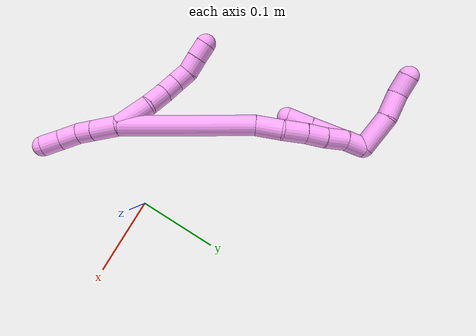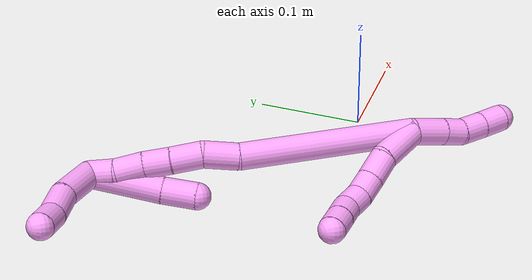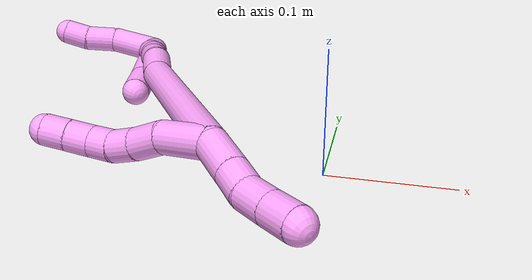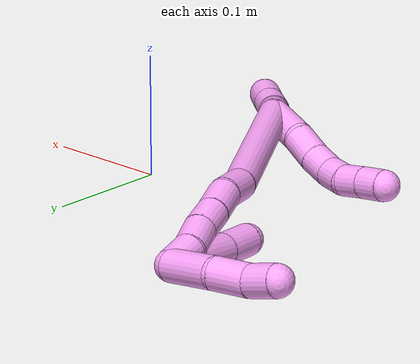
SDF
<sdf version="1.7">
 <world name="default">
  <model name="4">
   <static>0</static>
   <link name="4">
    <collision name="collision-cylinder-e_1_2_8">
     <pose>-0.009078 -0.004353 0.018913 0.226215 -0.437532 -0.050498</pose>
     <geometry><cylinder><radius>0.0125</radius><length>0.042851</length></cylinder></geometry>
     <surface>
      <friction><ode><mu>1.16</mu><mu2>1.16</mu2><slip1>0</slip1><slip2>0</slip2></ode></friction>
      <contact><ode><kp>1e+06</kp><kd>1</kd><max_vel>0</max_vel><min_depth>0.001</min_depth></ode></contact>
     </surface>
    </collision>
    <visual name="visual-cylinder-e_1_2_8">
     <pose>-0.009078 -0.004353 0.018913 0.226215 -0.437532 -0.050498</pose>
     <geometry><cylinder><radius>0.0125</radius><length>0.042851</length></cylinder></geometry>
     <material><ambient>1 0.65098 0.996078 1</ambient></material>
    </visual>
    <collision name="collision-cylinder-e_2_8_9">
     <pose>-0.026675 -0.010865 0.047155 0.227433 -0.726994 -0.086836</pose>
     <geometry><cylinder><radius>0.0125</radius><length>0.025634</length></cylinder></geometry>
     <surface>
      <friction><ode><mu>1.16</mu><mu2>1.16</mu2><slip1>0</slip1><slip2>0</slip2></ode></friction>
      <contact><ode><kp>1e+06</kp><kd>1</kd><max_vel>0</max_vel><min_depth>0.001</min_depth></ode></contact>
     </surface>
    </collision>
    <visual name="visual-cylinder-e_2_8_9">
     <pose>-0.026675 -0.010865 0.047155 0.227433 -0.726994 -0.086836</pose>
     <geometry><cylinder><radius>0.0125</radius><length>0.025634</length></cylinder></geometry>
     <material><ambient>1 0.65098 0.996078 1</ambient></material>
    </visual>
    <collision name="collision-cylinder-e_3_9_10">
     <pose>-0.041303 -0.015765 0.064486 0.330044 -0.625577 -0.107613</pose>
     <geometry><cylinder><radius>0.0125</radius><length>0.020867</length></cylinder></geometry>
     <surface>
      <friction><ode><mu>1.16</mu><mu2>1.16</mu2><slip1>0</slip1><slip2>0</slip2></ode></friction>
      <contact><ode><kp>1e+06</kp><kd>1</kd><max_vel>0</max_vel><min_depth>0.001</min_depth></ode></contact>
     </surface>
    </collision>
    <visual name="visual-cylinder-e_3_9_10">
     <pose>-0.041303 -0.015765 0.064486 0.330044 -0.625577 -0.107613</pose>
     <geometry><cylinder><radius>0.0125</radius><length>0.020867</length></cylinder></geometry>
     <material><ambient>1 0.65098 0.996078 1</ambient></material>
    </visual>
    <collision name="collision-cylinder-e_4_10_11">
     <pose>-0.050935 -0.021842 0.081321 0.361047 -0.357164 -0.065864</pose>
     <geometry><cylinder><radius>0.0125</radius><length>0.020156</length></cylinder></geometry>
     <surface>
      <friction><ode><mu>1.16</mu><mu2>1.16</mu2><slip1>0</slip1><slip2>0</slip2></ode></friction>
      <contact><ode><kp>1e+06</kp><kd>1</kd><max_vel>0</max_vel><min_depth>0.001</min_depth></ode></contact>
     </surface>
    </collision>
    <visual name="visual-cylinder-e_4_10_11">
     <pose>-0.050935 -0.021842 0.081321 0.361047 -0.357164 -0.065864</pose>
     <geometry><cylinder><radius>0.0125</radius><length>0.020156</length></cylinder></geometry>
     <material><ambient>1 0.65098 0.996078 1</ambient></material>
    </visual>
    <collision name="collision-cylinder-e_5_11_12">
     <pose>-0.057206 -0.031523 0.097636 0.703409 -0.273063 -0.100746</pose>
     <geometry><cylinder><radius>0.0125</radius><length>0.020376</length></cylinder></geometry>
     <surface>
      <friction><ode><mu>1.16</mu><mu2>1.16</mu2><slip1>0</slip1><slip2>0</slip2></ode></friction>
      <contact><ode><kp>1e+06</kp><kd>1</kd><max_vel>0</max_vel><min_depth>0.001</min_depth></ode></contact>
     </surface>
    </collision>
    <visual name="visual-cylinder-e_5_11_12">
     <pose>-0.057206 -0.031523 0.097636 0.703409 -0.273063 -0.100746</pose>
     <geometry><cylinder><radius>0.0125</radius><length>0.020376</length></cylinder></geometry>
     <material><ambient>1 0.65098 0.996078 1</ambient></material>
    </visual>
    <collision name="collision-cylinder-e_6_12_6">
     <pose>-0.062826 -0.04386 0.112669 0.670742 -0.289543 -0.10154</pose>
     <geometry><cylinder><radius>0.0125</radius><length>0.020116</length></cylinder></geometry>
     <surface>
      <friction><ode><mu>1.16</mu><mu2>1.16</mu2><slip1>0</slip1><slip2>0</slip2></ode></friction>
      <contact><ode><kp>1e+06</kp><kd>1</kd><max_vel>0</max_vel><min_depth>0.001</min_depth></ode></contact>
     </surface>
    </collision>
    <visual name="visual-cylinder-e_6_12_6">
     <pose>-0.062826 -0.04386 0.112669 0.670742 -0.289543 -0.10154</pose>
     <geometry><cylinder><radius>0.0125</radius><length>0.020116</length></cylinder></geometry>
     <material><ambient>1 0.65098 0.996078 1</ambient></material>
    </visual>
    <collision name="collision-cylinder-e_1_2_13">
     <pose>-0.002046 -0.000515 -0.016127 3.10964 -0.126162 -2.64606</pose>
     <geometry><cylinder><radius>0.0125</radius><length>0.032528</length></cylinder></geometry>
     <surface>
      <friction><ode><mu>1.16</mu><mu2>1.16</mu2><slip1>0</slip1><slip2>0</slip2></ode></friction>
      <contact><ode><kp>1e+06</kp><kd>1</kd><max_vel>0</max_vel><min_depth>0.001</min_depth></ode></contact>
     </surface>
    </collision>
    <visual name="visual-cylinder-e_1_2_13">
     <pose>-0.002046 -0.000515 -0.016127 3.10964 -0.126162 -2.64606</pose>
     <geometry><cylinder><radius>0.0125</radius><length>0.032528</length></cylinder></geometry>
     <material><ambient>1 0.65098 0.996078 1</ambient></material>
    </visual>
    <collision name="collision-cylinder-e_2_13_14">
     <pose>-0.005554 -0.001382 -0.042425 3.10713 -0.142612 -2.6681</pose>
     <geometry><cylinder><radius>0.0125</radius><length>0.020564</length></cylinder></geometry>
     <surface>
      <friction><ode><mu>1.16</mu><mu2>1.16</mu2><slip1>0</slip1><slip2>0</slip2></ode></friction>
      <contact><ode><kp>1e+06</kp><kd>1</kd><max_vel>0</max_vel><min_depth>0.001</min_depth></ode></contact>
     </surface>
    </collision>
    <visual name="visual-cylinder-e_2_13_14">
     <pose>-0.005554 -0.001382 -0.042425 3.10713 -0.142612 -2.6681</pose>
     <geometry><cylinder><radius>0.0125</radius><length>0.020564</length></cylinder></geometry>
     <material><ambient>1 0.65098 0.996078 1</ambient></material>
    </visual>
    <collision name="collision-cylinder-e_3_14_15">
     <pose>-0.00532 -0.001417 -0.064152 -3.11432 0.145663 -2.772</pose>
     <geometry><cylinder><radius>0.0125</radius><length>0.023367</length></cylinder></geometry>
     <surface>
      <friction><ode><mu>1.16</mu><mu2>1.16</mu2><slip1>0</slip1><slip2>0</slip2></ode></friction>
      <contact><ode><kp>1e+06</kp><kd>1</kd><max_vel>0</max_vel><min_depth>0.001</min_depth></ode></contact>
     </surface>
    </collision>
    <visual name="visual-cylinder-e_3_14_15">
     <pose>-0.00532 -0.001417 -0.064152 -3.11432 0.145663 -2.772</pose>
     <geometry><cylinder><radius>0.0125</radius><length>0.023367</length></cylinder></geometry>
     <material><ambient>1 0.65098 0.996078 1</ambient></material>
    </visual>
    <collision name="collision-cylinder-e_4_15_5">
     <pose>-0.001562 -0.001068 -0.087296 -3.13864 0.176101 -3.1081</pose>
     <geometry><cylinder><radius>0.0125</radius><length>0.023541</length></cylinder></geometry>
     <surface>
      <friction><ode><mu>1.16</mu><mu2>1.16</mu2><slip1>0</slip1><slip2>0</slip2></ode></friction>
      <contact><ode><kp>1e+06</kp><kd>1</kd><max_vel>0</max_vel><min_depth>0.001</min_depth></ode></contact>
     </surface>
    </collision>
    <visual name="visual-cylinder-e_4_15_5">
     <pose>-0.001562 -0.001068 -0.087296 -3.13864 0.176101 -3.1081</pose>
     <geometry><cylinder><radius>0.0125</radius><length>0.023541</length></cylinder></geometry>
     <material><ambient>1 0.65098 0.996078 1</ambient></material>
    </visual>
    <collision name="collision-cylinder-e_1_2_16">
     <pose>-0.003188 0.023606 0.077779 -0.294671 -0.039199 0.005818</pose>
     <geometry><cylinder><radius>0.0125</radius><length>0.162689</length></cylinder></geometry>
     <surface>
      <friction><ode><mu>1.16</mu><mu2>1.16</mu2><slip1>0</slip1><slip2>0</slip2></ode></friction>
      <contact><ode><kp>1e+06</kp><kd>1</kd><max_vel>0</max_vel><min_depth>0.001</min_depth></ode></contact>
     </surface>
    </collision>
    <visual name="visual-cylinder-e_1_2_16">
     <pose>-0.003188 0.023606 0.077779 -0.294671 -0.039199 0.005818</pose>
     <geometry><cylinder><radius>0.0125</radius><length>0.162689</length></cylinder></geometry>
     <material><ambient>1 0.65098 0.996078 1</ambient></material>
    </visual>
    <collision name="collision-cylinder-e_2_16_17">
     <pose>-0.003914 0.053508 0.17017 -0.406767 0.153519 -0.031721</pose>
     <geometry><cylinder><radius>0.0125</radius><length>0.032201</length></cylinder></geometry>
     <surface>
      <friction><ode><mu>1.16</mu><mu2>1.16</mu2><slip1>0</slip1><slip2>0</slip2></ode></friction>
      <contact><ode><kp>1e+06</kp><kd>1</kd><max_vel>0</max_vel><min_depth>0.001</min_depth></ode></contact>
     </surface>
    </collision>
    <visual name="visual-cylinder-e_2_16_17">
     <pose>-0.003914 0.053508 0.17017 -0.406767 0.153519 -0.031721</pose>
     <geometry><cylinder><radius>0.0125</radius><length>0.032201</length></cylinder></geometry>
     <material><ambient>1 0.65098 0.996078 1</ambient></material>
    </visual>
    <collision name="collision-cylinder-e_3_17_18">
     <pose>-0.003133 0.06644 0.197456 -0.482415 -0.117038 0.028822</pose>
     <geometry><cylinder><radius>0.0125</radius><length>0.028808</length></cylinder></geometry>
     <surface>
      <friction><ode><mu>1.16</mu><mu2>1.16</mu2><slip1>0</slip1><slip2>0</slip2></ode></friction>
      <contact><ode><kp>1e+06</kp><kd>1</kd><max_vel>0</max_vel><min_depth>0.001</min_depth></ode></contact>
     </surface>
    </collision>
    <visual name="visual-cylinder-e_3_17_18">
     <pose>-0.003133 0.06644 0.197456 -0.482415 -0.117038 0.028822</pose>
     <geometry><cylinder><radius>0.0125</radius><length>0.028808</length></cylinder></geometry>
     <material><ambient>1 0.65098 0.996078 1</ambient></material>
    </visual>
    <collision name="collision-cylinder-e_4_18_19">
     <pose>-0.006 0.079584 0.220641 -0.55432 -0.095534 0.027197</pose>
     <geometry><cylinder><radius>0.0125</radius><length>0.02484</length></cylinder></geometry>
     <surface>
      <friction><ode><mu>1.16</mu><mu2>1.16</mu2><slip1>0</slip1><slip2>0</slip2></ode></friction>
      <contact><ode><kp>1e+06</kp><kd>1</kd><max_vel>0</max_vel><min_depth>0.001</min_depth></ode></contact>
     </surface>
    </collision>
    <visual name="visual-cylinder-e_4_18_19">
     <pose>-0.006 0.079584 0.220641 -0.55432 -0.095534 0.027197</pose>
     <geometry><cylinder><radius>0.0125</radius><length>0.02484</length></cylinder></geometry>
     <material><ambient>1 0.65098 0.996078 1</ambient></material>
    </visual>
    <collision name="collision-cylinder-e_5_19_20">
     <pose>-0.009427 0.092114 0.242733 -0.479557 -0.170094 0.04168</pose>
     <geometry><cylinder><radius>0.0125</radius><length>0.026485</length></cylinder></geometry>
     <surface>
      <friction><ode><mu>1.16</mu><mu2>1.16</mu2><slip1>0</slip1><slip2>0</slip2></ode></friction>
      <contact><ode><kp>1e+06</kp><kd>1</kd><max_vel>0</max_vel><min_depth>0.001</min_depth></ode></contact>
     </surface>
    </collision>
    <visual name="visual-cylinder-e_5_19_20">
     <pose>-0.009427 0.092114 0.242733 -0.479557 -0.170094 0.04168</pose>
     <geometry><cylinder><radius>0.0125</radius><length>0.026485</length></cylinder></geometry>
     <material><ambient>1 0.65098 0.996078 1</ambient></material>
    </visual>
    <collision name="collision-cylinder-e_6_20_1">
     <pose>-0.011999 0.106099 0.263925 -0.691844 -0.026489 0.009548</pose>
     <geometry><cylinder><radius>0.0125</radius><length>0.024976</length></cylinder></geometry>
     <surface>
      <friction><ode><mu>1.16</mu><mu2>1.16</mu2><slip1>0</slip1><slip2>0</slip2></ode></friction>
      <contact><ode><kp>1e+06</kp><kd>1</kd><max_vel>0</max_vel><min_depth>0.001</min_depth></ode></contact>
     </surface>
    </collision>
    <visual name="visual-cylinder-e_6_20_1">
     <pose>-0.011999 0.106099 0.263925 -0.691844 -0.026489 0.009548</pose>
     <geometry><cylinder><radius>0.0125</radius><length>0.024976</length></cylinder></geometry>
     <material><ambient>1 0.65098 0.996078 1</ambient></material>
    </visual>
    <collision name="collision-cylinder-e_1_1_21">
     <pose>-0.021843 0.096137 0.246062 2.56352 -0.282219 -0.89132</pose>
     <geometry><cylinder><radius>0.0125</radius><length>0.068317</length></cylinder></geometry>
     <surface>
      <friction><ode><mu>1.16</mu><mu2>1.16</mu2><slip1>0</slip1><slip2>0</slip2></ode></friction>
      <contact><ode><kp>1e+06</kp><kd>1</kd><max_vel>0</max_vel><min_depth>0.001</min_depth></ode></contact>
     </surface>
    </collision>
    <visual name="visual-cylinder-e_1_1_21">
     <pose>-0.021843 0.096137 0.246062 2.56352 -0.282219 -0.89132</pose>
     <geometry><cylinder><radius>0.0125</radius><length>0.068317</length></cylinder></geometry>
     <material><ambient>1 0.65098 0.996078 1</ambient></material>
    </visual>
    <collision name="collision-cylinder-e_2_21_4">
     <pose>-0.03486 0.069227 0.206017 2.52097 -0.223095 -0.672114</pose>
     <geometry><cylinder><radius>0.0125</radius><length>0.031683</length></cylinder></geometry>
     <surface>
      <friction><ode><mu>1.16</mu><mu2>1.16</mu2><slip1>0</slip1><slip2>0</slip2></ode></friction>
      <contact><ode><kp>1e+06</kp><kd>1</kd><max_vel>0</max_vel><min_depth>0.001</min_depth></ode></contact>
     </surface>
    </collision>
    <visual name="visual-cylinder-e_2_21_4">
     <pose>-0.03486 0.069227 0.206017 2.52097 -0.223095 -0.672114</pose>
     <geometry><cylinder><radius>0.0125</radius><length>0.031683</length></cylinder></geometry>
     <material><ambient>1 0.65098 0.996078 1</ambient></material>
    </visual>
    <collision name="collision-cylinder-e_1_1_22">
     <pose>-0.017845 0.101091 0.291329 0.630041 -0.245457 -0.080348</pose>
     <geometry><cylinder><radius>0.0125</radius><length>0.045397</length></cylinder></geometry>
     <surface>
      <friction><ode><mu>1.16</mu><mu2>1.16</mu2><slip1>0</slip1><slip2>0</slip2></ode></friction>
      <contact><ode><kp>1e+06</kp><kd>1</kd><max_vel>0</max_vel><min_depth>0.001</min_depth></ode></contact>
     </surface>
    </collision>
    <visual name="visual-cylinder-e_1_1_22">
     <pose>-0.017845 0.101091 0.291329 0.630041 -0.245457 -0.080348</pose>
     <geometry><cylinder><radius>0.0125</radius><length>0.045397</length></cylinder></geometry>
     <material><ambient>1 0.65098 0.996078 1</ambient></material>
    </visual>
    <collision name="collision-cylinder-e_2_22_23">
     <pose>-0.029527 0.077786 0.318513 0.83294 -0.415789 -0.18608</pose>
     <geometry><cylinder><radius>0.0125</radius><length>0.030529</length></cylinder></geometry>
     <surface>
      <friction><ode><mu>1.16</mu><mu2>1.16</mu2><slip1>0</slip1><slip2>0</slip2></ode></friction>
      <contact><ode><kp>1e+06</kp><kd>1</kd><max_vel>0</max_vel><min_depth>0.001</min_depth></ode></contact>
     </surface>
    </collision>
    <visual name="visual-cylinder-e_2_22_23">
     <pose>-0.029527 0.077786 0.318513 0.83294 -0.415789 -0.18608</pose>
     <geometry><cylinder><radius>0.0125</radius><length>0.030529</length></cylinder></geometry>
     <material><ambient>1 0.65098 0.996078 1</ambient></material>
    </visual>
    <collision name="collision-cylinder-e_3_23_3">
     <pose>-0.037951 0.05903 0.336204 0.792997 -0.188792 -0.079236</pose>
     <geometry><cylinder><radius>0.0125</radius><length>0.024074</length></cylinder></geometry>
     <surface>
      <friction><ode><mu>1.16</mu><mu2>1.16</mu2><slip1>0</slip1><slip2>0</slip2></ode></friction>
      <contact><ode><kp>1e+06</kp><kd>1</kd><max_vel>0</max_vel><min_depth>0.001</min_depth></ode></contact>
     </surface>
    </collision>
    <visual name="visual-cylinder-e_3_23_3">
     <pose>-0.037951 0.05903 0.336204 0.792997 -0.188792 -0.079236</pose>
     <geometry><cylinder><radius>0.0125</radius><length>0.024074</length></cylinder></geometry>
     <material><ambient>1 0.65098 0.996078 1</ambient></material>
    </visual>
    <collision name="collision-sphere-3">
     <pose>-0.04021 0.050607 0.3445 0 -0 0</pose>
     <geometry><sphere><radius>0.0125</radius></sphere></geometry>
     <surface>
      <friction><ode><mu>1.16</mu><mu2>1.16</mu2><slip1>0</slip1><slip2>0</slip2></ode></friction>
      <contact><ode><kp>1e+06</kp><kd>1</kd><max_vel>0</max_vel><min_depth>0.001</min_depth></ode></contact>
     </surface>
    </collision>
    <visual name="visual-sphere-3">
     <pose>-0.04021 0.050607 0.3445 0 -0 0</pose>
     <geometry><sphere><radius>0.0125</radius></sphere></geometry>
     <material><ambient>1 0.65098 0.996078 1</ambient></material>
    </visual>
    <collision name="collision-sphere-23">
     <pose>-0.035692 0.067454 0.327907 0 -0 0</pose>
     <geometry><sphere><radius>0.0125</radius></sphere></geometry>
     <surface>
      <friction><ode><mu>1.16</mu><mu2>1.16</mu2><slip1>0</slip1><slip2>0</slip2></ode></friction>
      <contact><ode><kp>1e+06</kp><kd>1</kd><max_vel>0</max_vel><min_depth>0.001</min_depth></ode></contact>
     </surface>
    </collision>
    <visual name="visual-sphere-23">
     <pose>-0.035692 0.067454 0.327907 0 -0 0</pose>
     <geometry><sphere><radius>0.0125</radius></sphere></geometry>
     <material><ambient>1 0.65098 0.996078 1</ambient></material>
    </visual>
    <collision name="collision-sphere-22">
     <pose>-0.023361 0.088118 0.30912 0 -0 0</pose>
     <geometry><sphere><radius>0.0125</radius></sphere></geometry>
     <surface>
      <friction><ode><mu>1.16</mu><mu2>1.16</mu2><slip1>0</slip1><slip2>0</slip2></ode></friction>
      <contact><ode><kp>1e+06</kp><kd>1</kd><max_vel>0</max_vel><min_depth>0.001</min_depth></ode></contact>
     </surface>
    </collision>
    <visual name="visual-sphere-22">
     <pose>-0.023361 0.088118 0.30912 0 -0 0</pose>
     <geometry><sphere><radius>0.0125</radius></sphere></geometry>
     <material><ambient>1 0.65098 0.996078 1</ambient></material>
    </visual>
    <collision name="collision-sphere-4">
     <pose>-0.038365 0.060243 0.193449 0 -0 0</pose>
     <geometry><sphere><radius>0.0125</radius></sphere></geometry>
     <surface>
      <friction><ode><mu>1.16</mu><mu2>1.16</mu2><slip1>0</slip1><slip2>0</slip2></ode></friction>
      <contact><ode><kp>1e+06</kp><kd>1</kd><max_vel>0</max_vel><min_depth>0.001</min_depth></ode></contact>
     </surface>
    </collision>
    <visual name="visual-sphere-4">
     <pose>-0.038365 0.060243 0.193449 0 -0 0</pose>
     <geometry><sphere><radius>0.0125</radius></sphere></geometry>
     <material><ambient>1 0.65098 0.996078 1</ambient></material>
    </visual>
    <collision name="collision-sphere-21">
     <pose>-0.031355 0.078211 0.218585 0 -0 0</pose>
     <geometry><sphere><radius>0.0125</radius></sphere></geometry>
     <surface>
      <friction><ode><mu>1.16</mu><mu2>1.16</mu2><slip1>0</slip1><slip2>0</slip2></ode></friction>
      <contact><ode><kp>1e+06</kp><kd>1</kd><max_vel>0</max_vel><min_depth>0.001</min_depth></ode></contact>
     </surface>
    </collision>
    <visual name="visual-sphere-21">
     <pose>-0.031355 0.078211 0.218585 0 -0 0</pose>
     <geometry><sphere><radius>0.0125</radius></sphere></geometry>
     <material><ambient>1 0.65098 0.996078 1</ambient></material>
    </visual>
    <collision name="collision-sphere-1">
     <pose>-0.01233 0.114063 0.273539 0 -0 0</pose>
     <geometry><sphere><radius>0.0125</radius></sphere></geometry>
     <surface>
      <friction><ode><mu>1.16</mu><mu2>1.16</mu2><slip1>0</slip1><slip2>0</slip2></ode></friction>
      <contact><ode><kp>1e+06</kp><kd>1</kd><max_vel>0</max_vel><min_depth>0.001</min_depth></ode></contact>
     </surface>
    </collision>
    <visual name="visual-sphere-1">
     <pose>-0.01233 0.114063 0.273539 0 -0 0</pose>
     <geometry><sphere><radius>0.0125</radius></sphere></geometry>
     <material><ambient>1 0.65098 0.996078 1</ambient></material>
    </visual>
    <collision name="collision-sphere-12">
     <pose>-0.059954 -0.037868 0.105118 0 -0 0</pose>
     <geometry><sphere><radius>0.0125</radius></sphere></geometry>
     <surface>
      <friction><ode><mu>1.16</mu><mu2>1.16</mu2><slip1>0</slip1><slip2>0</slip2></ode></friction>
      <contact><ode><kp>1e+06</kp><kd>1</kd><max_vel>0</max_vel><min_depth>0.001</min_depth></ode></contact>
     </surface>
    </collision>
    <visual name="visual-sphere-12">
     <pose>-0.059954 -0.037868 0.105118 0 -0 0</pose>
     <geometry><sphere><radius>0.0125</radius></sphere></geometry>
     <material><ambient>1 0.65098 0.996078 1</ambient></material>
    </visual>
    <collision name="collision-sphere-11">
     <pose>-0.054459 -0.025177 0.090154 0 -0 0</pose>
     <geometry><sphere><radius>0.0125</radius></sphere></geometry>
     <surface>
      <friction><ode><mu>1.16</mu><mu2>1.16</mu2><slip1>0</slip1><slip2>0</slip2></ode></friction>
      <contact><ode><kp>1e+06</kp><kd>1</kd><max_vel>0</max_vel><min_depth>0.001</min_depth></ode></contact>
     </surface>
    </collision>
    <visual name="visual-sphere-11">
     <pose>-0.054459 -0.025177 0.090154 0 -0 0</pose>
     <geometry><sphere><radius>0.0125</radius></sphere></geometry>
     <material><ambient>1 0.65098 0.996078 1</ambient></material>
    </visual>
    <collision name="collision-sphere-10">
     <pose>-0.047412 -0.018506 0.072487 0 -0 0</pose>
     <geometry><sphere><radius>0.0125</radius></sphere></geometry>
     <surface>
      <friction><ode><mu>1.16</mu><mu2>1.16</mu2><slip1>0</slip1><slip2>0</slip2></ode></friction>
      <contact><ode><kp>1e+06</kp><kd>1</kd><max_vel>0</max_vel><min_depth>0.001</min_depth></ode></contact>
     </surface>
    </collision>
    <visual name="visual-sphere-10">
     <pose>-0.047412 -0.018506 0.072487 0 -0 0</pose>
     <geometry><sphere><radius>0.0125</radius></sphere></geometry>
     <material><ambient>1 0.65098 0.996078 1</ambient></material>
    </visual>
    <collision name="collision-sphere-9">
     <pose>-0.035193 -0.013024 0.056485 0 -0 0</pose>
     <geometry><sphere><radius>0.0125</radius></sphere></geometry>
     <surface>
      <friction><ode><mu>1.16</mu><mu2>1.16</mu2><slip1>0</slip1><slip2>0</slip2></ode></friction>
      <contact><ode><kp>1e+06</kp><kd>1</kd><max_vel>0</max_vel><min_depth>0.001</min_depth></ode></contact>
     </surface>
    </collision>
    <visual name="visual-sphere-9">
     <pose>-0.035193 -0.013024 0.056485 0 -0 0</pose>
     <geometry><sphere><radius>0.0125</radius></sphere></geometry>
     <material><ambient>1 0.65098 0.996078 1</ambient></material>
    </visual>
    <collision name="collision-sphere-2">
     <geometry><sphere><radius>0.0125</radius></sphere></geometry>
     <surface>
      <friction><ode><mu>1.16</mu><mu2>1.16</mu2><slip1>0</slip1><slip2>0</slip2></ode></friction>
      <contact><ode><kp>1e+06</kp><kd>1</kd><max_vel>0</max_vel><min_depth>0.001</min_depth></ode></contact>
     </surface>
    </collision>
    <visual name="visual-sphere-2">
     <geometry><sphere><radius>0.0125</radius></sphere></geometry>
     <material><ambient>1 0.65098 0.996078 1</ambient></material>
    </visual>
    <collision name="collision-sphere-19">
     <pose>-0.007185 0.086092 0.231154 0 -0 0</pose>
     <geometry><sphere><radius>0.0125</radius></sphere></geometry>
     <surface>
      <friction><ode><mu>1.16</mu><mu2>1.16</mu2><slip1>0</slip1><slip2>0</slip2></ode></friction>
      <contact><ode><kp>1e+06</kp><kd>1</kd><max_vel>0</max_vel><min_depth>0.001</min_depth></ode></contact>
     </surface>
    </collision>
    <visual name="visual-sphere-19">
     <pose>-0.007185 0.086092 0.231154 0 -0 0</pose>
     <geometry><sphere><radius>0.0125</radius></sphere></geometry>
     <material><ambient>1 0.65098 0.996078 1</ambient></material>
    </visual>
    <collision name="collision-sphere-8">
     <pose>-0.018156 -0.008706 0.037826 0 -0 0</pose>
     <geometry><sphere><radius>0.0125</radius></sphere></geometry>
     <surface>
      <friction><ode><mu>1.16</mu><mu2>1.16</mu2><slip1>0</slip1><slip2>0</slip2></ode></friction>
      <contact><ode><kp>1e+06</kp><kd>1</kd><max_vel>0</max_vel><min_depth>0.001</min_depth></ode></contact>
     </surface>
    </collision>
    <visual name="visual-sphere-8">
     <pose>-0.018156 -0.008706 0.037826 0 -0 0</pose>
     <geometry><sphere><radius>0.0125</radius></sphere></geometry>
     <material><ambient>1 0.65098 0.996078 1</ambient></material>
    </visual>
    <collision name="collision-sphere-6">
     <pose>-0.065697 -0.049852 0.12022 0 -0 0</pose>
     <geometry><sphere><radius>0.0125</radius></sphere></geometry>
     <surface>
      <friction><ode><mu>1.16</mu><mu2>1.16</mu2><slip1>0</slip1><slip2>0</slip2></ode></friction>
      <contact><ode><kp>1e+06</kp><kd>1</kd><max_vel>0</max_vel><min_depth>0.001</min_depth></ode></contact>
     </surface>
    </collision>
    <visual name="visual-sphere-6">
     <pose>-0.065697 -0.049852 0.12022 0 -0 0</pose>
     <geometry><sphere><radius>0.0125</radius></sphere></geometry>
     <material><ambient>1 0.65098 0.996078 1</ambient></material>
    </visual>
    <collision name="collision-sphere-13">
     <pose>-0.004093 -0.001031 -0.032253 0 -0 0</pose>
     <geometry><sphere><radius>0.0125</radius></sphere></geometry>
     <surface>
      <friction><ode><mu>1.16</mu><mu2>1.16</mu2><slip1>0</slip1><slip2>0</slip2></ode></friction>
      <contact><ode><kp>1e+06</kp><kd>1</kd><max_vel>0</max_vel><min_depth>0.001</min_depth></ode></contact>
     </surface>
    </collision>
    <visual name="visual-sphere-13">
     <pose>-0.004093 -0.001031 -0.032253 0 -0 0</pose>
     <geometry><sphere><radius>0.0125</radius></sphere></geometry>
     <material><ambient>1 0.65098 0.996078 1</ambient></material>
    </visual>
    <collision name="collision-sphere-14">
     <pose>-0.007016 -0.001732 -0.052596 0 -0 0</pose>
     <geometry><sphere><radius>0.0125</radius></sphere></geometry>
     <surface>
      <friction><ode><mu>1.16</mu><mu2>1.16</mu2><slip1>0</slip1><slip2>0</slip2></ode></friction>
      <contact><ode><kp>1e+06</kp><kd>1</kd><max_vel>0</max_vel><min_depth>0.001</min_depth></ode></contact>
     </surface>
    </collision>
    <visual name="visual-sphere-14">
     <pose>-0.007016 -0.001732 -0.052596 0 -0 0</pose>
     <geometry><sphere><radius>0.0125</radius></sphere></geometry>
     <material><ambient>1 0.65098 0.996078 1</ambient></material>
    </visual>
    <collision name="collision-sphere-15">
     <pose>-0.003624 -0.001102 -0.075707 0 -0 0</pose>
     <geometry><sphere><radius>0.0125</radius></sphere></geometry>
     <surface>
      <friction><ode><mu>1.16</mu><mu2>1.16</mu2><slip1>0</slip1><slip2>0</slip2></ode></friction>
      <contact><ode><kp>1e+06</kp><kd>1</kd><max_vel>0</max_vel><min_depth>0.001</min_depth></ode></contact>
     </surface>
    </collision>
    <visual name="visual-sphere-15">
     <pose>-0.003624 -0.001102 -0.075707 0 -0 0</pose>
     <geometry><sphere><radius>0.0125</radius></sphere></geometry>
     <material><ambient>1 0.65098 0.996078 1</ambient></material>
    </visual>
    <collision name="collision-sphere-5">
     <pose>0.0005 -0.001033 -0.098884 0 -0 0</pose>
     <geometry><sphere><radius>0.0125</radius></sphere></geometry>
     <surface>
      <friction><ode><mu>1.16</mu><mu2>1.16</mu2><slip1>0</slip1><slip2>0</slip2></ode></friction>
      <contact><ode><kp>1e+06</kp><kd>1</kd><max_vel>0</max_vel><min_depth>0.001</min_depth></ode></contact>
     </surface>
    </collision>
    <visual name="visual-sphere-5">
     <pose>0.0005 -0.001033 -0.098884 0 -0 0</pose>
     <geometry><sphere><radius>0.0125</radius></sphere></geometry>
     <material><ambient>1 0.65098 0.996078 1</ambient></material>
    </visual>
    <collision name="collision-sphere-16">
     <pose>-0.006376 0.047213 0.155557 0 -0 0</pose>
     <geometry><sphere><radius>0.0125</radius></sphere></geometry>
     <surface>
      <friction><ode><mu>1.16</mu><mu2>1.16</mu2><slip1>0</slip1><slip2>0</slip2></ode></friction>
      <contact><ode><kp>1e+06</kp><kd>1</kd><max_vel>0</max_vel><min_depth>0.001</min_depth></ode></contact>
     </surface>
    </collision>
    <visual name="visual-sphere-16">
     <pose>-0.006376 0.047213 0.155557 0 -0 0</pose>
     <geometry><sphere><radius>0.0125</radius></sphere></geometry>
     <material><ambient>1 0.65098 0.996078 1</ambient></material>
    </visual>
    <collision name="collision-sphere-17">
     <pose>-0.001452 0.059803 0.184783 0 -0 0</pose>
     <geometry><sphere><radius>0.0125</radius></sphere></geometry>
     <surface>
      <friction><ode><mu>1.16</mu><mu2>1.16</mu2><slip1>0</slip1><slip2>0</slip2></ode></friction>
      <contact><ode><kp>1e+06</kp><kd>1</kd><max_vel>0</max_vel><min_depth>0.001</min_depth></ode></contact>
     </surface>
    </collision>
    <visual name="visual-sphere-17">
     <pose>-0.001452 0.059803 0.184783 0 -0 0</pose>
     <geometry><sphere><radius>0.0125</radius></sphere></geometry>
     <material><ambient>1 0.65098 0.996078 1</ambient></material>
    </visual>
    <collision name="collision-sphere-18">
     <pose>-0.004815 0.073076 0.210129 0 -0 0</pose>
     <geometry><sphere><radius>0.0125</radius></sphere></geometry>
     <surface>
      <friction><ode><mu>1.16</mu><mu2>1.16</mu2><slip1>0</slip1><slip2>0</slip2></ode></friction>
      <contact><ode><kp>1e+06</kp><kd>1</kd><max_vel>0</max_vel><min_depth>0.001</min_depth></ode></contact>
     </surface>
    </collision>
    <visual name="visual-sphere-18">
     <pose>-0.004815 0.073076 0.210129 0 -0 0</pose>
     <geometry><sphere><radius>0.0125</radius></sphere></geometry>
     <material><ambient>1 0.65098 0.996078 1</ambient></material>
    </visual>
    <collision name="collision-sphere-20">
     <pose>-0.011668 0.098135 0.254312 0 -0 0</pose>
     <geometry><sphere><radius>0.0125</radius></sphere></geometry>
     <surface>
      <friction><ode><mu>1.16</mu><mu2>1.16</mu2><slip1>0</slip1><slip2>0</slip2></ode></friction>
      <contact><ode><kp>1e+06</kp><kd>1</kd><max_vel>0</max_vel><min_depth>0.001</min_depth></ode></contact>
     </surface>
    </collision>
    <visual name="visual-sphere-20">
     <pose>-0.011668 0.098135 0.254312 0 -0 0</pose>
     <geometry><sphere><radius>0.0125</radius></sphere></geometry>
     <material><ambient>1 0.65098 0.996078 1</ambient></material>
    </visual>
    <inertial>
     <pose>-0.016517 0.038437 0.134684 0 -0 0</pose>
     <mass>0.75</mass>
     <inertia>
      <ixx>0.000382</ixx>
      <ixy>0</ixy>
      <ixz>0</ixz>
      <iyy>0.000352</iyy>
      <iyz>0</iyz>
      <izz>-2.3e-05</izz>
     </inertia>
    </inertial>
   </link>
   <pose>-0.068249 -0.071039 0.049375 -1.22049 -1.0901 0.49857</pose>
  </model>
 </world>
</sdf>
